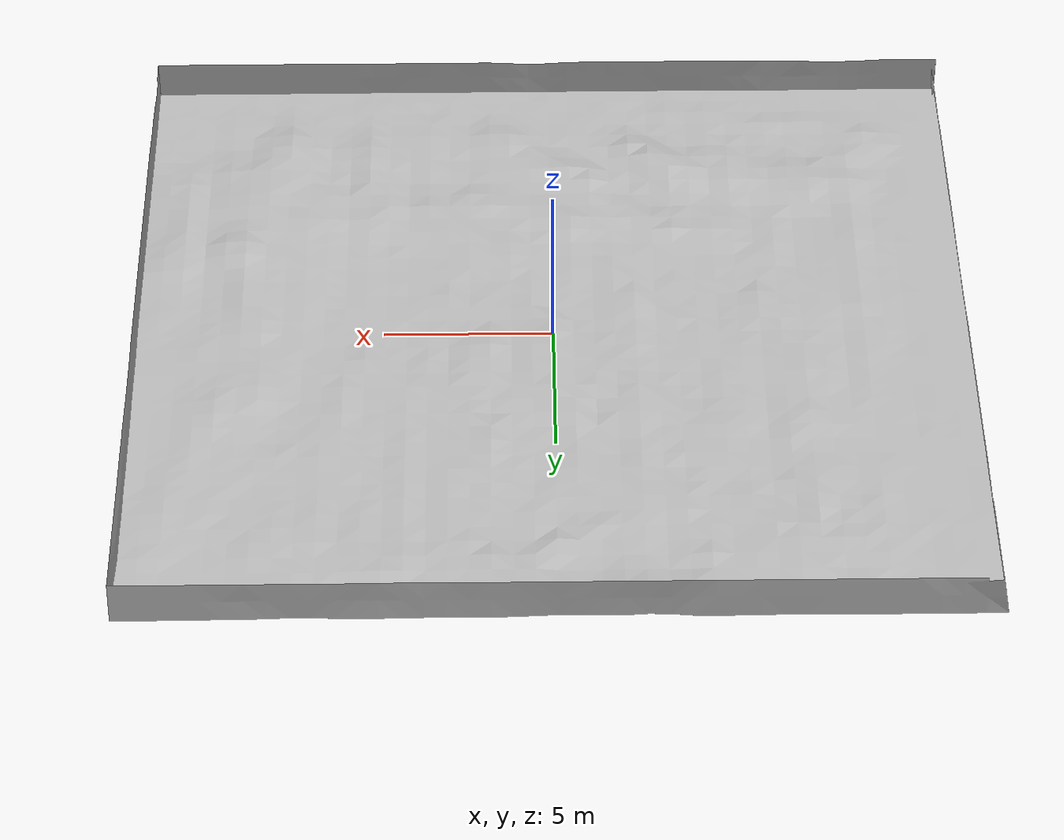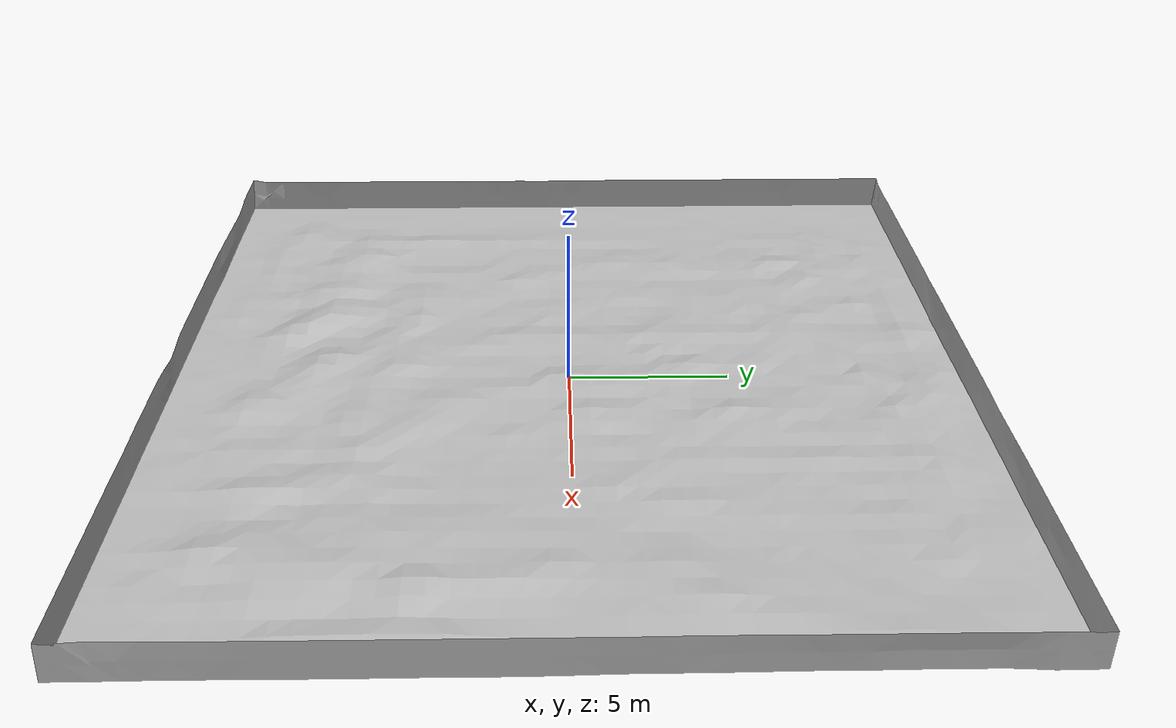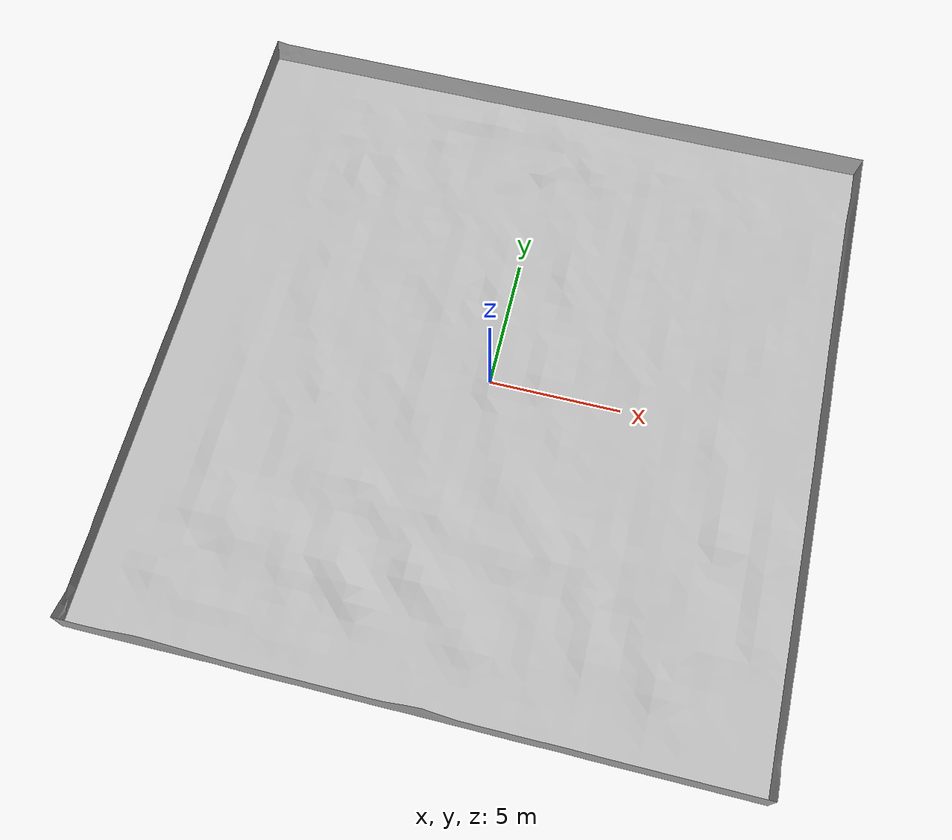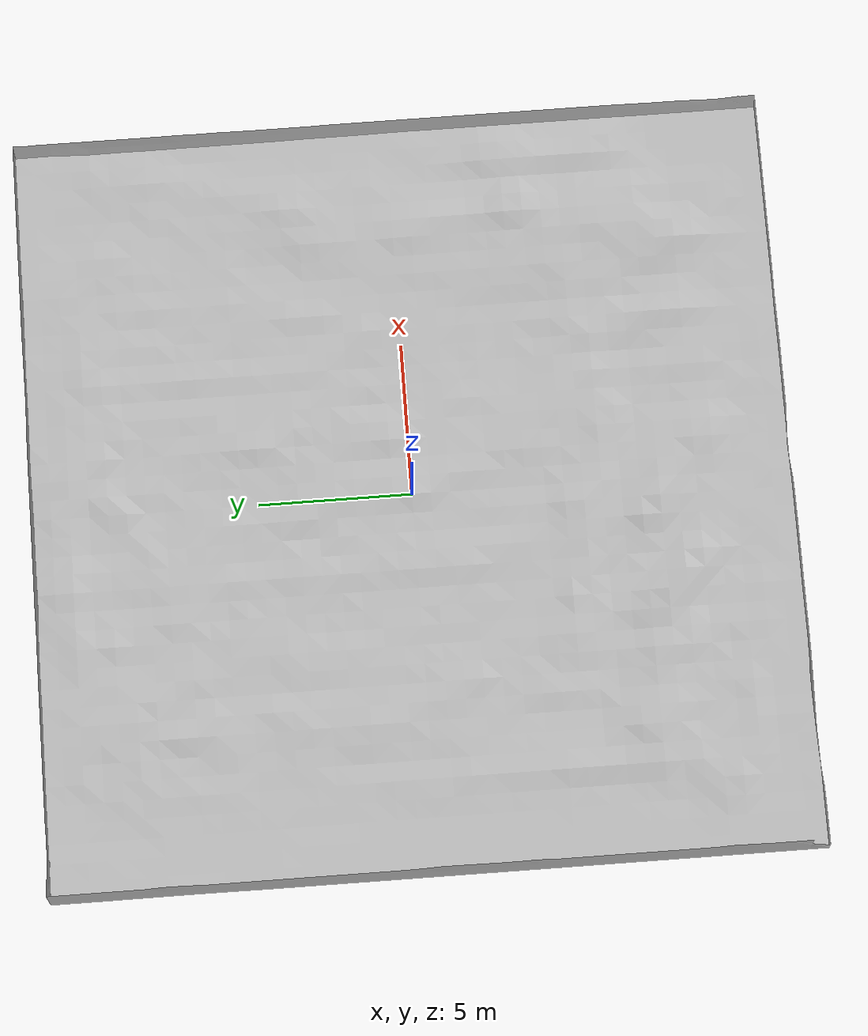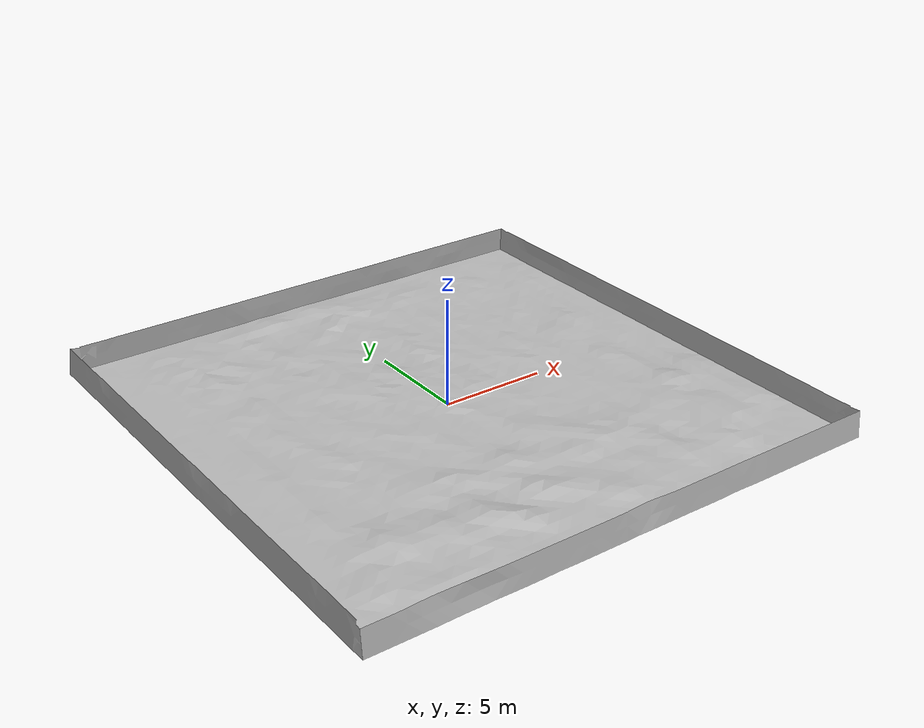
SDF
<sdf version='1.6'>
  <world name='default'>
    <include>
      <uri>model://sun</uri>
    </include>

    <include>
      <name>sandbed</name>
      <uri>model://sandbed</uri>
      <pose>0 0 0 0 0 0</pose>
    </include>

    <gui fullscreen='0'>
      <camera name='user_camera'>
        <pose frame=''>9.0 -12.0 6.0 0.0 0.3 2.2</pose>
        <view_controller>orbit</view_controller>
        <projection_type>perspective</projection_type>
      </camera>
    </gui>

  </world>
</sdf>

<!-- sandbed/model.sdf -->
<sdf version="1.5">
  <model name="sandbed">
    <pose>0 0 0 0 0 0</pose>
    <static>true</static>
    <link name="body">
      <visual name="visual">
        <geometry>
          <mesh><uri>model://sandbed/media/sandbed.dae</uri></mesh>
        </geometry>
	<material>
          <script>
            <uri>model://sandbed/media/scripts</uri>
            <uri>model://sandbed/media/Textures</uri>
          </script>
        </material>
      </visual>
      <collision name="collision">
        <geometry>
          <mesh><uri>model://sandbed/media/sandbed.dae</uri></mesh>
        </geometry>
      </collision>
    </link>
  </model>
</sdf>
